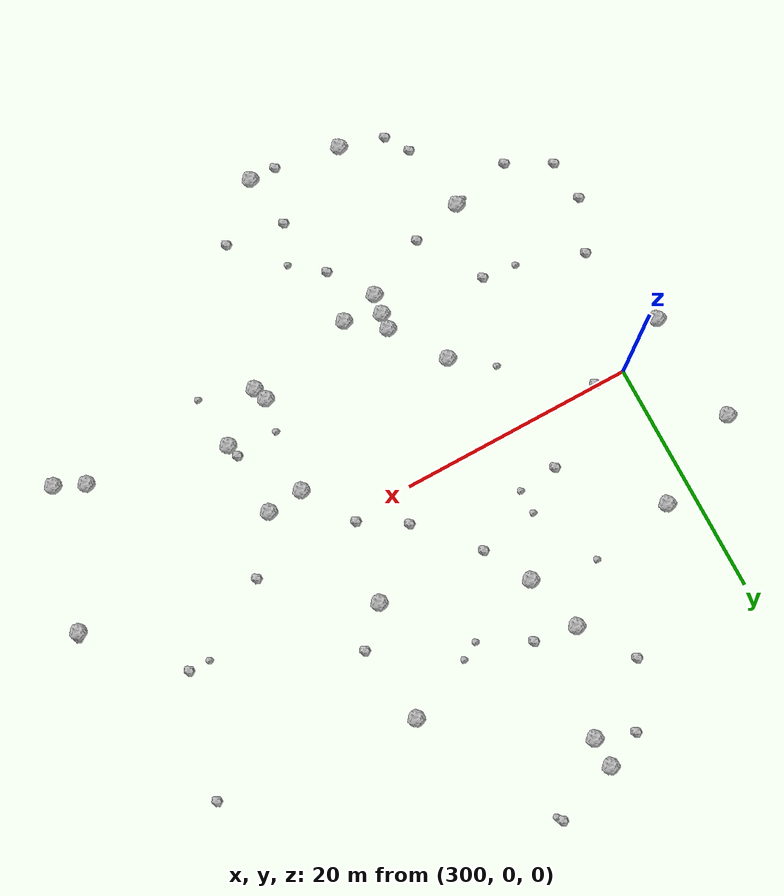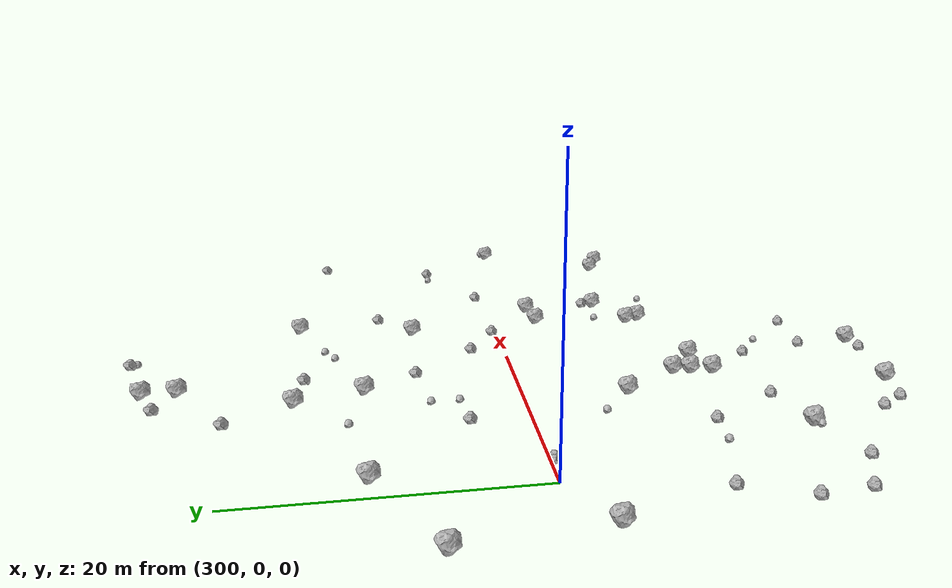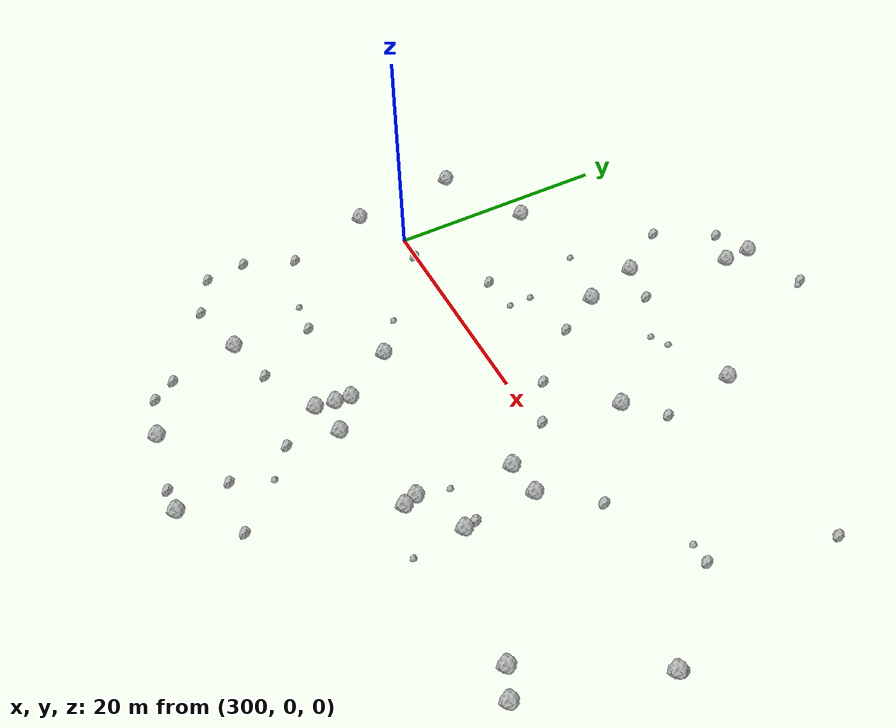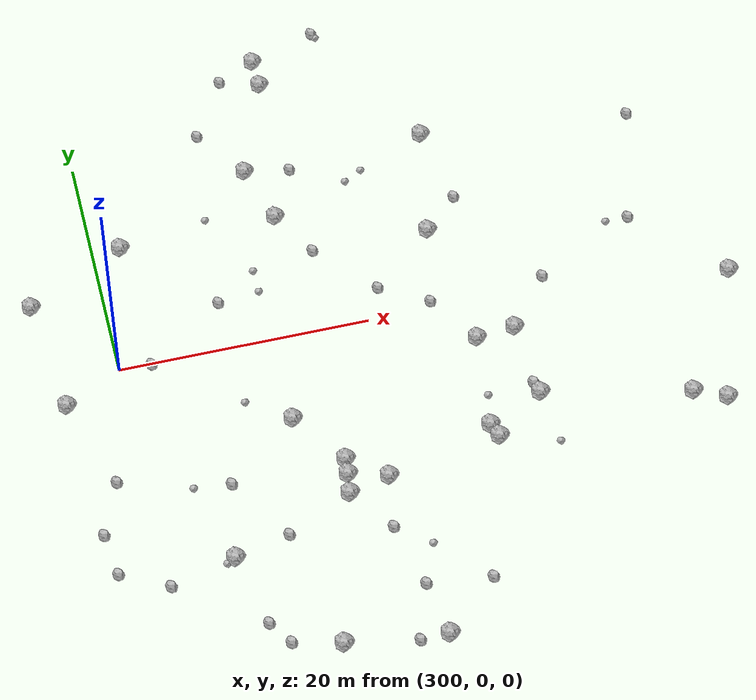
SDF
<sdf version="1.6">
 <world name="default">
  <include><uri>model://sun</uri></include>
  <model name="rock1_8_2">
   <include><uri>model://rock1</uri><pose>294.38127146501915 7.241805360778656 0.5 0 0 0</pose></include>
  </model>
  <model name="rock1_8_3">
   <include><uri>model://rock1</uri><pose>331.3989924292279 -9.938230232970888 0.5 0 0 0</pose></include>
  </model>
  <model name="rock1_8_4">
   <include><uri>model://rock1</uri><pose>316.75359681760347 24.97042763574872 0.5 0 0 0</pose></include>
  </model>
  <model name="rock1_8_5">
   <include><uri>model://rock1</uri><pose>328.4799804927032 16.805955781997852 0.5 0 0 0</pose></include>
  </model>
  <model name="rock1_8_6">
   <include><uri>model://rock1</uri><pose>319.3169033558424 -28.949869382722447 0.5 0 0 0</pose></include>
  </model>
  <model name="rock1_8_7">
   <include><uri>model://rock1</uri><pose>313.6287707795521 16.44297092769365 0.5 0 0 0</pose></include>
  </model>
  <model name="rock1_8_8">
   <include><uri>model://rock1</uri><pose>316.6998044868651 27.482872072120408 0.5 0 0 0</pose></include>
  </model>
  <model name="rock1_8_9">
   <include><uri>model://rock1</uri><pose>314.9099049398738 -15.386830967002618 0.5 0 0 0</pose></include>
  </model>
  <model name="rock1_8_10">
   <include><uri>model://rock1</uri><pose>342.9855009893213 -12.623730060258943 0.5 0 0 0</pose></include>
  </model>
  <model name="rock1_8_11">
   <include><uri>model://rock1</uri><pose>311.51384054599214 -27.92384741160655 0.5 0 0 0</pose></include>
  </model>
  <model name="rock1_8_12">
   <include><uri>model://rock1</uri><pose>318.1807513644534 -14.597742403295417 0.5 0 0 0</pose></include>
  </model>
  <model name="rock1_8_13">
   <include><uri>model://rock1</uri><pose>327.89809150450606 -3.8377702165149508 0.5 0 0 0</pose></include>
  </model>
  <model name="rock1_8_14">
   <include><uri>model://rock1</uri><pose>302.3212001910158 11.268507688863451 0.5 0 0 0</pose></include>
  </model>
  <model name="rock1_8_15">
   <include><uri>model://rock1</uri><pose>315.05871466376414 11.42181940258542 0.5 0 0 0</pose></include>
  </model>
  <model name="rock1_8_16">
   <include><uri>model://rock1</uri><pose>326.6773407482979 7.2382610233985645 0.5 0 0 0</pose></include>
  </model>
  <model name="rock1_8_17">
   <include><uri>model://rock1</uri><pose>295.45225850351716 -2.5274958222904402 0.5 0 0 0</pose></include>
  </model>
  <model name="rock1_8_18">
   <include><uri>model://rock1</uri><pose>326.8813669103283 -11.915543976785557 0.5 0 0 0</pose></include>
  </model>
  <model name="rock1_8_19">
   <include><uri>model://rock1</uri><pose>345.4385347614555 -13.77156772516712 0.5 0 0 0</pose></include>
  </model>
  <model name="rock1_8_20">
   <include><uri>model://rock1</uri><pose>315.30211743729427 -12.333441591088302 0.5 0 0 0</pose></include>
  </model>
  <model name="rock1_8_21">
   <include><uri>model://rock1</uri><pose>349.05501395790486 -2.2040206205062987 0.5 0 0 0</pose></include>
  </model>
  <model name="rock1_8_22">
   <include><uri>model://rock1</uri><pose>327.30319590214924 -13.093863238376677 0.5 0 0 0</pose></include>
  </model>
  <model name="rock1_8_23">
   <include><uri>model://rock1</uri><pose>331.02995621752285 -3.525669313705464 0.5 0 0 0</pose></include>
  </model>
  <model name="rock1_8_24">
   <include><uri>model://rock1</uri><pose>315.1594606764899 -13.694856540662514 0.5 0 0 0</pose></include>
  </model>
  <model name="rock1_8_25">
   <include><uri>model://rock1</uri><pose>305.26977443402916 -18.913850936881815 0.5 0 0 0</pose></include>
  </model>
  <model name="rock1_8_26">
   <include><uri>model://rock1</uri><pose>312.17970516633125 -7.804147924876027 0.5 0 0 0</pose></include>
  </model>
  <model name="rock2_8_0">
   <include><uri>model://rock2</uri><pose>296.0146326696164 -14.602342586643317 0.3 0 0 0</pose></include>
  </model>
  <model name="rock2_8_1">
   <include><uri>model://rock2</uri><pose>307.73344028086495 -26.87741605838405 0.3 0 0 0</pose></include>
  </model>
  <model name="rock2_8_2">
   <include><uri>model://rock2</uri><pose>313.5609306744777 26.124390388842087 0.3 0 0 0</pose></include>
  </model>
  <model name="rock2_8_3">
   <include><uri>model://rock2</uri><pose>302.55026056647756 -0.1850741864839094 0.3 0 0 0</pose></include>
  </model>
  <model name="rock2_8_4">
   <include><uri>model://rock2</uri><pose>309.61629227771977 -17.805813863402413 0.3 0 0 0</pose></include>
  </model>
  <model name="rock2_8_5">
   <include><uri>model://rock2</uri><pose>334.42521520505494 0.7973598618516711 0.3 0 0 0</pose></include>
  </model>
  <model name="rock2_8_6">
   <include><uri>model://rock2</uri><pose>317.03326059199196 -28.912721174400858 0.3 0 0 0</pose></include>
  </model>
  <model name="rock2_8_7">
   <include><uri>model://rock2</uri><pose>317.2115075629888 15.898671245312919 0.3 0 0 0</pose></include>
  </model>
  <model name="rock2_8_8">
   <include><uri>model://rock2</uri><pose>318.6174469615825 -24.35104210485852 0.3 0 0 0</pose></include>
  </model>
  <model name="rock2_8_9">
   <include><uri>model://rock2</uri><pose>322.1086682066208 29.43370065220153 0.3 0 0 0</pose></include>
  </model>
  <model name="rock2_8_10">
   <include><uri>model://rock2</uri><pose>342.6581998462332 4.799746277951336 0.3 0 0 0</pose></include>
  </model>
  <model name="rock2_8_11">
   <include><uri>model://rock2</uri><pose>310.58324096378954 20.999853483622317 0.3 0 0 0</pose></include>
  </model>
  <model name="rock2_8_12">
   <include><uri>model://rock2</uri><pose>321.44078043212596 2.7617690561547548 0.3 0 0 0</pose></include>
  </model>
  <model name="rock2_8_13">
   <include><uri>model://rock2</uri><pose>331.1058450055759 -8.84860677138606 0.3 0 0 0</pose></include>
  </model>
  <model name="rock2_8_14">
   <include><uri>model://rock2</uri><pose>329.51307645270873 10.089919809707588 0.3 0 0 0</pose></include>
  </model>
  <model name="rock2_8_15">
   <include><uri>model://rock2</uri><pose>296.4134510832728 -18.187370457673964 0.3 0 0 0</pose></include>
  </model>
  <model name="rock2_8_16">
   <include><uri>model://rock2</uri><pose>317.21625203479636 7.523570639993466 0.3 0 0 0</pose></include>
  </model>
  <model name="rock2_8_17">
   <include><uri>model://rock2</uri><pose>308.82868511788996 4.319881334278492 0.3 0 0 0</pose></include>
  </model>
  <model name="rock2_8_18">
   <include><uri>model://rock2</uri><pose>323.658604929459 -24.960033192740063 0.3 0 0 0</pose></include>
  </model>
  <model name="rock2_8_19">
   <include><uri>model://rock2</uri><pose>297.83469138926847 -10.20581116480544 0.3 0 0 0</pose></include>
  </model>
  <model name="rock2_8_20">
   <include><uri>model://rock2</uri><pose>349.26233450161925 -1.8011702374834329 0.3 0 0 0</pose></include>
  </model>
  <model name="rock2_8_21">
   <include><uri>model://rock2</uri><pose>306.33216589691716 -12.418820947324946 0.3 0 0 0</pose></include>
  </model>
  <model name="rock2_8_22">
   <include><uri>model://rock2</uri><pose>300.05254756519116 -20.13773339505935 0.3 0 0 0</pose></include>
  </model>
  <model name="rock2_8_23">
   <include><uri>model://rock2</uri><pose>345.4991026522694 15.01663246763843 0.3 0 0 0</pose></include>
  </model>
  <model name="rock2_8_24">
   <include><uri>model://rock2</uri><pose>317.4276224310966 -18.98092614427053 0.3 0 0 0</pose></include>
  </model>
  <model name="rock2_8_25">
   <include><uri>model://rock2</uri><pose>325.17799316675007 0.5087952518081558 0.3 0 0 0</pose></include>
  </model>
  <model name="rock2_8_26">
   <include><uri>model://rock2</uri><pose>306.4791291178044 -24.901585707753267 0.3 0 0 0</pose></include>
  </model>
  <model name="rock3_8_0">
   <include><uri>model://rock3</uri><pose>321.33949790742207 13.668656249532859 0.2 0 0 0</pose></include>
  </model>
  <model name="rock3_8_1">
   <include><uri>model://rock3</uri><pose>312.189949373414 4.641396829191862 0.2 0 0 0</pose></include>
  </model>
  <model name="rock3_8_2">
   <include><uri>model://rock3</uri><pose>304.5512507238433 -19.183499276304097 0.2 0 0 0</pose></include>
  </model>
  <model name="rock3_8_3">
   <include><uri>model://rock3</uri><pose>340.81504732002065 4.784725724655878 0.2 0 0 0</pose></include>
  </model>
  <model name="rock3_8_4">
   <include><uri>model://rock3</uri><pose>319.9872357643606 -21.073042567748622 0.2 0 0 0</pose></include>
  </model>
  <model name="rock3_8_5">
   <include><uri>model://rock3</uri><pose>331.7721201609658 -14.537522155383728 0.2 0 0 0</pose></include>
  </model>
  <model name="rock3_8_6">
   <include><uri>model://rock3</uri><pose>303.4253212864938 -12.117531556313676 0.2 0 0 0</pose></include>
  </model>
  <model name="rock3_8_7">
   <include><uri>model://rock3</uri><pose>312.17522026336337 6.701395588800239 0.2 0 0 0</pose></include>
  </model>
  <model name="rock3_8_8">
   <include><uri>model://rock3</uri><pose>322.8315593252213 14.49417497173161 0.2 0 0 0</pose></include>
  </model>
  <model name="rock3_8_9">
   <include><uri>model://rock3</uri><pose>322.3682858412758 28.940899734350303 0.2 0 0 0</pose></include>
  </model>
  <model name="rock3_8_10">
   <include><uri>model://rock3</uri><pose>309.4824743651656 12.49720517303954 0.2 0 0 0</pose></include>
  </model>
  <model name="rock3_8_11">
   <include><uri>model://rock3</uri><pose>327.3890777880383 -9.168689801229739 0.2 0 0 0</pose></include>
  </model>
  <model name="rock3_8_12">
   <include><uri>model://rock3</uri><pose>308.8917714392809 -5.377711834874951 0.2 0 0 0</pose></include>
  </model>
 </world>
</sdf>
